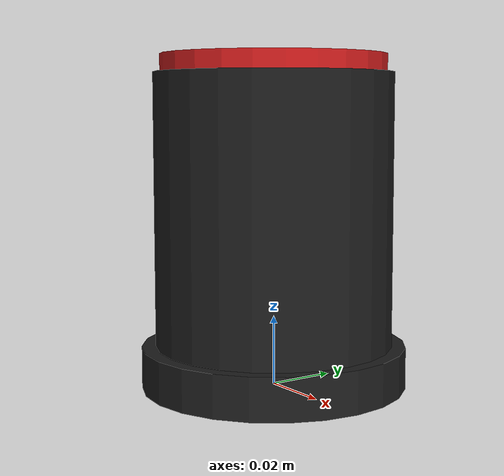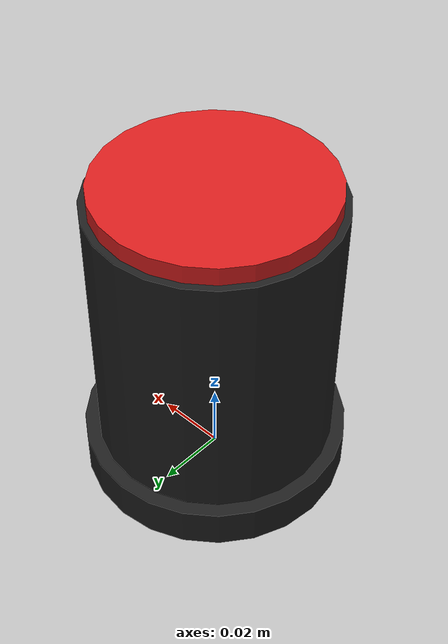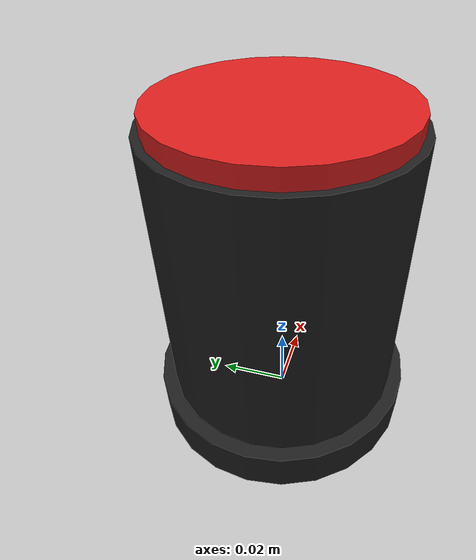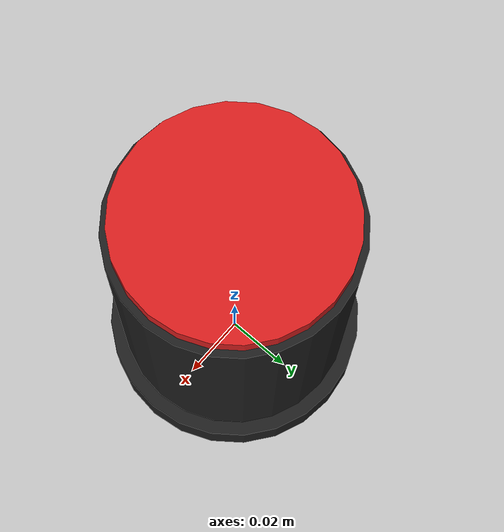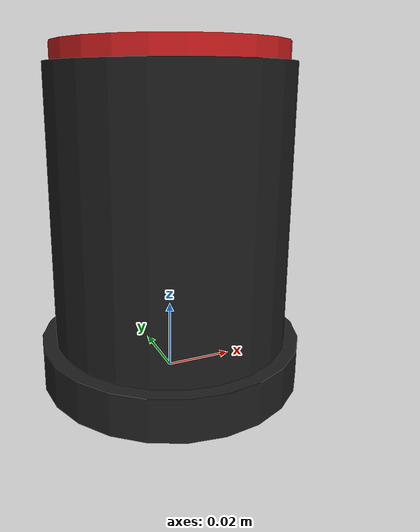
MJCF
<?xml version="1.0" encoding="UTF-8"?>
<mujoco model="libero_vlabench_single_button">
  <compiler angle="radian"/>
  <worldbody>
    <body>
      <body name="object">
        <geom name="button_pedestal" type="cylinder" size="0.034 0.042"
              pos="0 0 0.048" mass="0.03" group="1"
              rgba="0.12 0.12 0.12 1"/>
        <geom name="button_cap" type="cylinder" size="0.032 0.010"
              pos="0 0 0.085" mass="0.01" group="1"
              rgba="0.85 0.12 0.12 1" solref="0.002 1"/>
        <geom name="button_base" type="cylinder" size="0.038 0.006"
              pos="0 0 0.006" mass="0.03" group="1"
              rgba="0.12 0.12 0.12 1"/>
        <site name="button_touch_site" type="cylinder" size="0.032 0.010"
              pos="0 0 0.085" rgba="0 1 0 0"/>
        <site name="button_default_site" pos="0 0 0.085" size="0.005"
              rgba="1 0 0 0"/>
      </body>
    </body>
  </worldbody>
  <sensor>
    <touch name="button_touch" site="button_touch_site"/>
  </sensor>
</mujoco>
